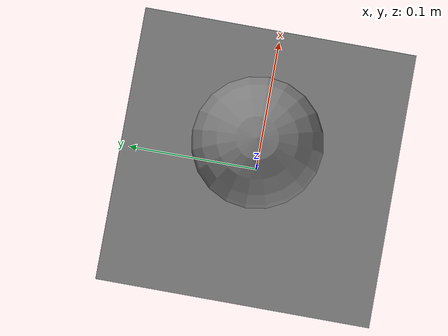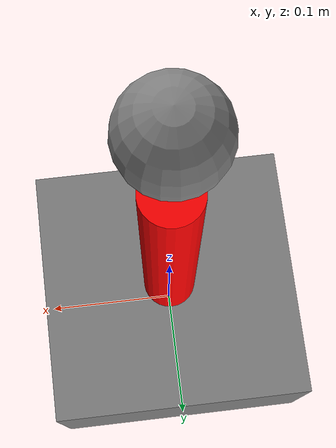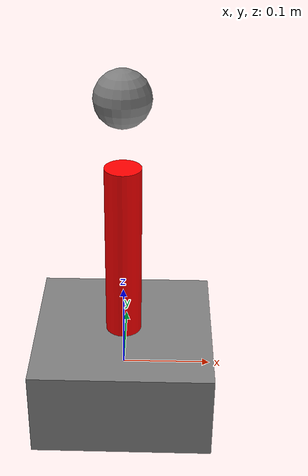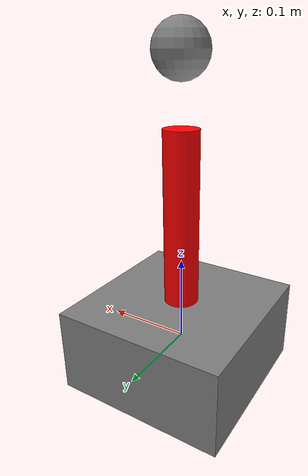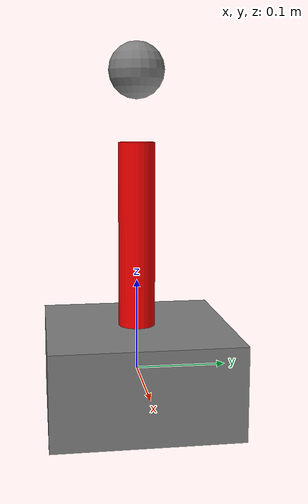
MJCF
<?xml version="1.0"?>
<mujoco model="test_mjcf_robot">
  <compiler angle="radian"/>
  <default>
    <geom rgba="0.5 0.5 0.5 1"/>
  </default>

  <worldbody>
    <body name="base_link" pos="0 0 0">
      <inertial pos="0 0 0" mass="1.0" diaginertia="0.01 0.01 0.01"/>
      <geom type="box" size="0.1 0.1 0.05" rgba="0.5 0.5 0.5 1"/>

      <body name="link1" pos="0 0 0.05">
        <joint name="joint1" type="hinge" axis="0 1 0" range="-1.57 1.57"/>
        <inertial pos="0 0 0.1" mass="0.5" diaginertia="0.001 0.001 0.001"/>
        <geom type="cylinder" size="0.02 0.1" pos="0 0 0.1" rgba="1 0 0 1"/>

        <body name="link2" pos="0 0 0.2">
          <joint name="joint2" type="hinge" axis="0 1 0" range="-2.0 2.0"/>
          <inertial pos="0 0 0.075" mass="0.3" diaginertia="0.0005 0.0005 0.0005"/>
          <geom type="sphere" size="0.03" pos="0 0 0.075" rgba="0.5 0.5 0.5 1"/>
        </body>
      </body>
    </body>
  </worldbody>
</mujoco>
